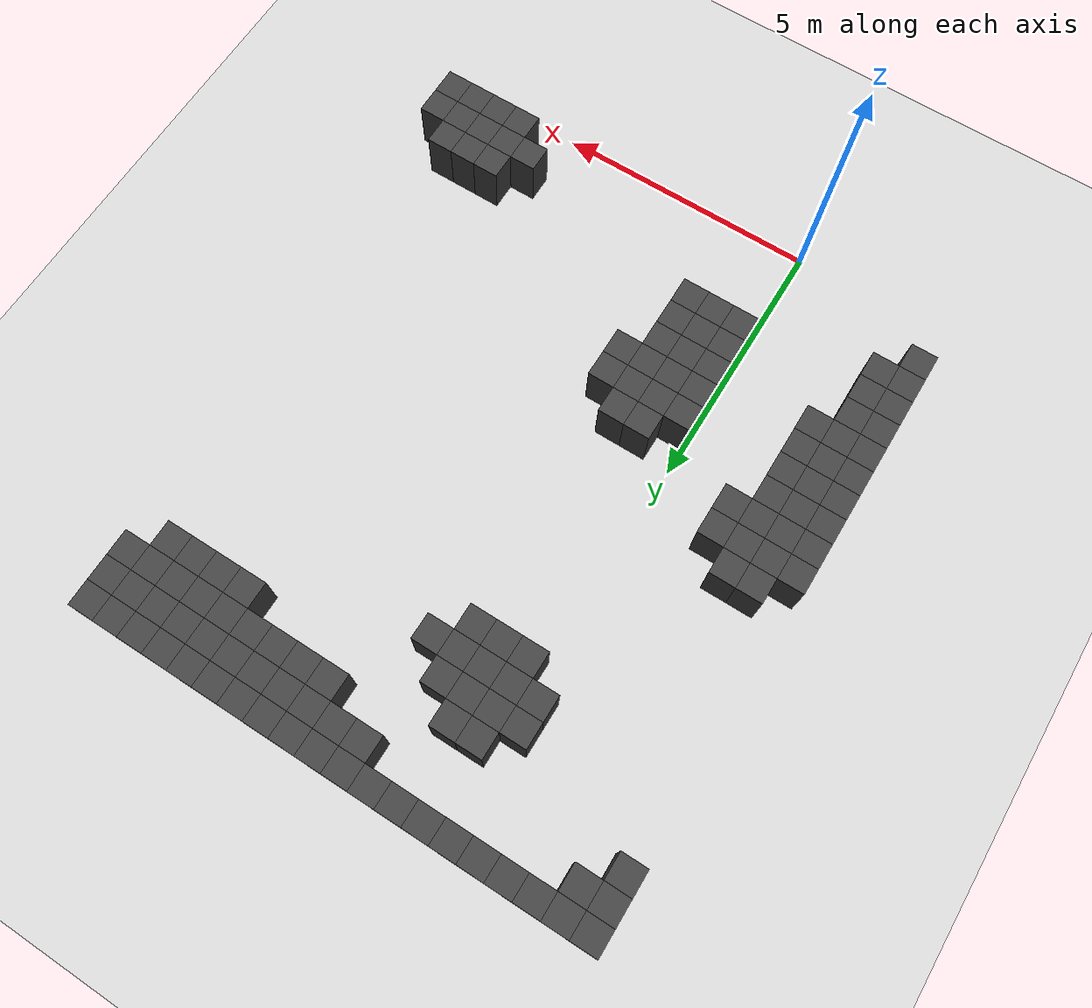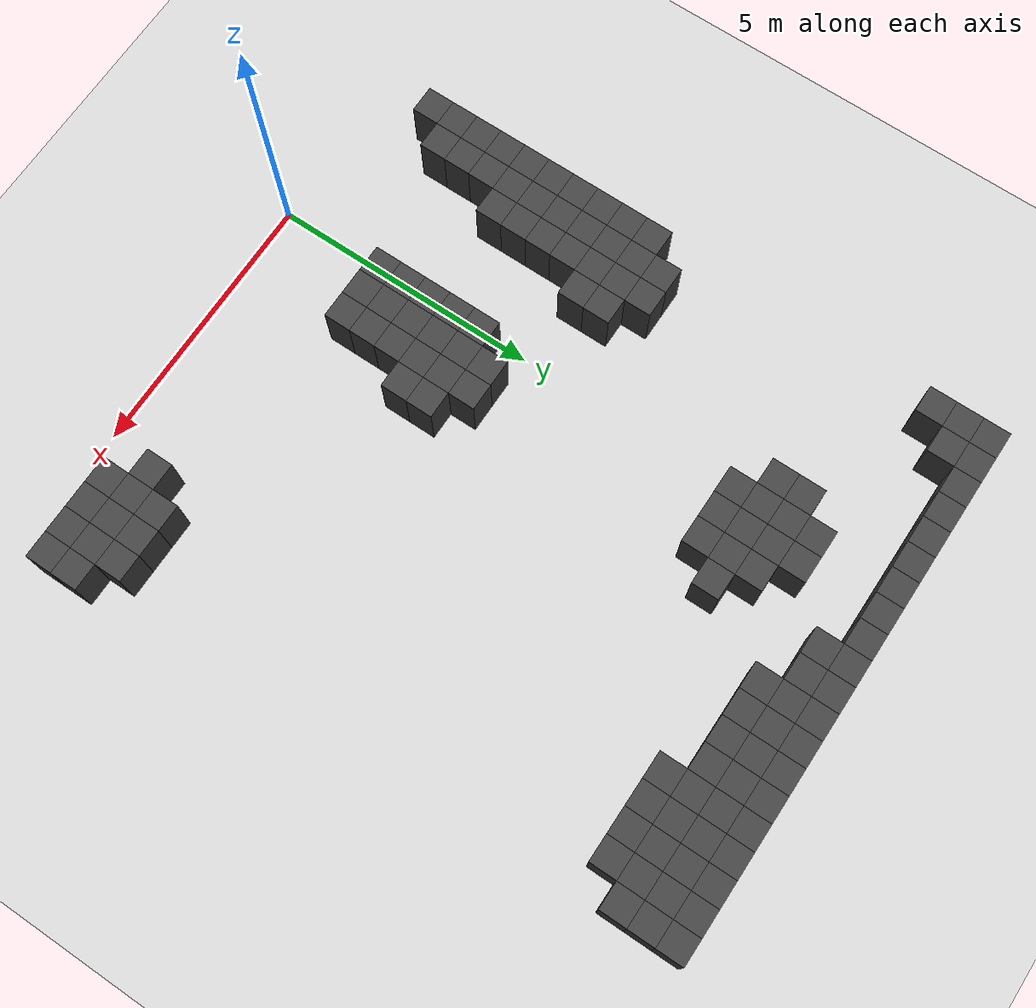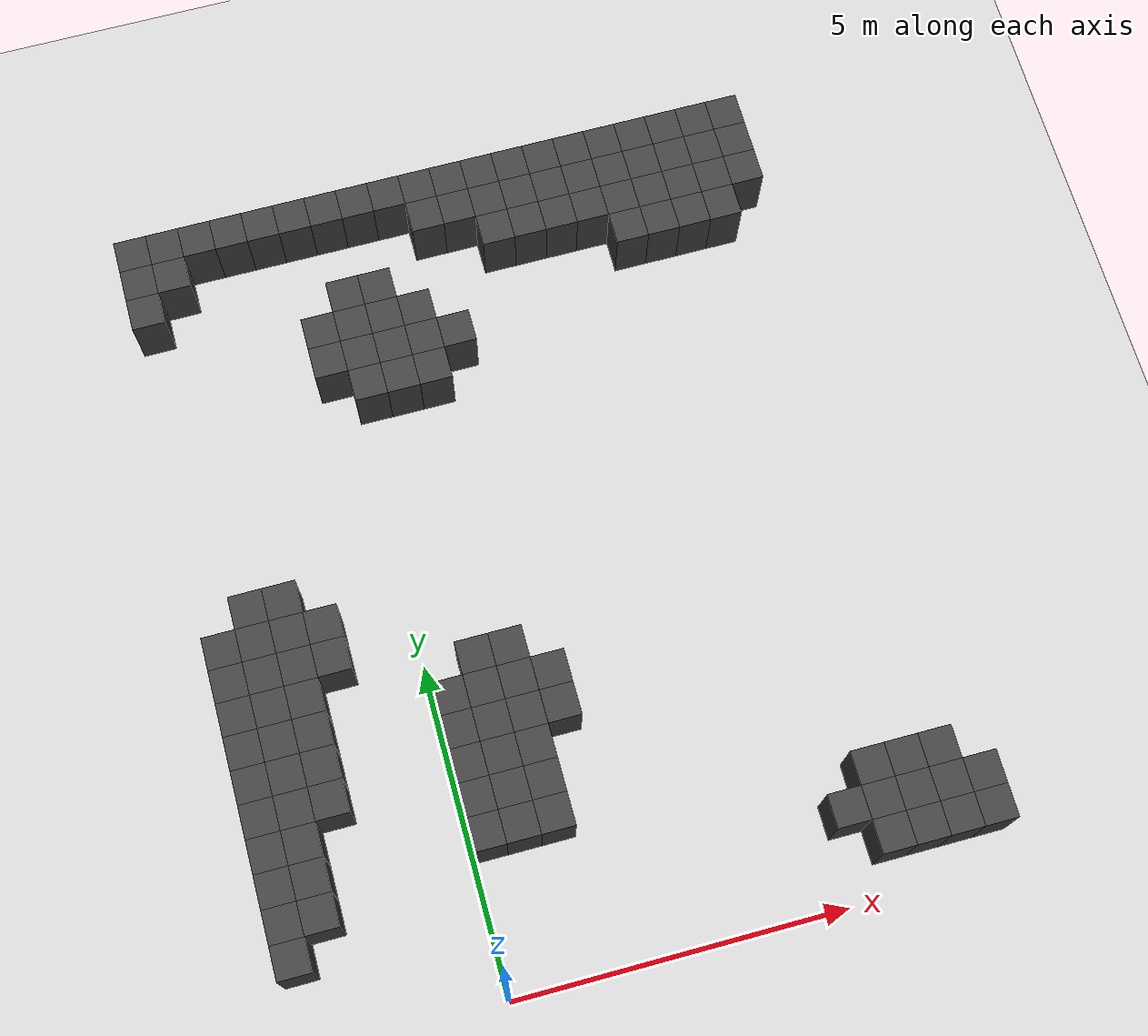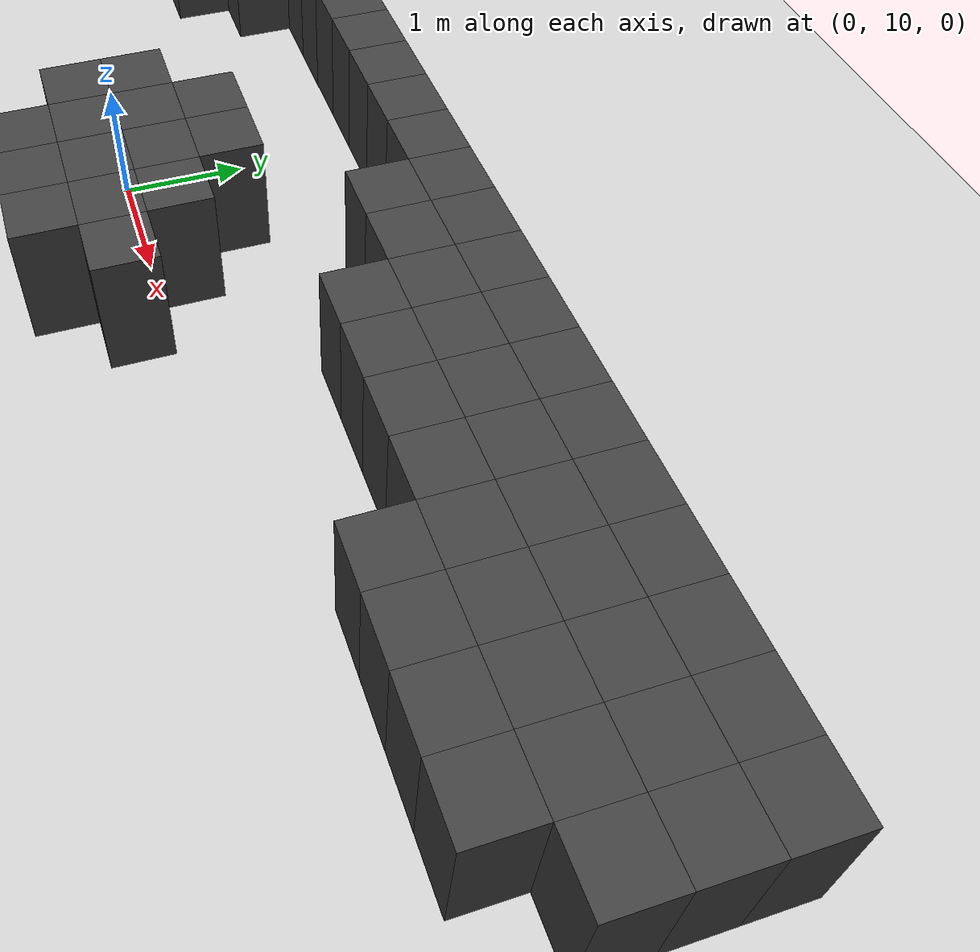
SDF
<sdf version="1.7">
 <world name="map_7372">
  <model name="ground_plane">
   <static>true</static>
   <link name="link">
    <collision name="collision">
     <geometry><plane><normal>0 0 1</normal><size>200 200</size></plane></geometry>
    </collision>
    <visual name="visual">
     <geometry><plane><normal>0 0 1</normal><size>200 200</size></plane></geometry>
     <material><ambient>0.8 0.8 0.8 1</ambient><diffuse>0.8 0.8 0.8 1</diffuse></material>
    </visual>
   </link>
  </model>
  <model name="maze_environment">
   <static>true</static>
   <link name="wall_19">
    <pose>-2.750 12.250 0.500 0 0 0</pose>
    <collision name="col"><geometry><box><size>0.5 0.5 1.0</size></box></geometry></collision>
    <visual name="vis">
     <geometry><box><size>0.5 0.5 1.0</size></box></geometry>
     <material><ambient>0.15 0.15 0.15 1</ambient><diffuse>0.25 0.25 0.25 1</diffuse></material>
    </visual>
   </link>
   <link name="wall_20">
    <pose>-2.250 12.250 0.500 0 0 0</pose>
    <collision name="col"><geometry><box><size>0.5 0.5 1.0</size></box></geometry></collision>
    <visual name="vis">
     <geometry><box><size>0.5 0.5 1.0</size></box></geometry>
     <material><ambient>0.15 0.15 0.15 1</ambient><diffuse>0.25 0.25 0.25 1</diffuse></material>
    </visual>
   </link>
   <link name="wall_21">
    <pose>-1.750 12.250 0.500 0 0 0</pose>
    <collision name="col"><geometry><box><size>0.5 0.5 1.0</size></box></geometry></collision>
    <visual name="vis">
     <geometry><box><size>0.5 0.5 1.0</size></box></geometry>
     <material><ambient>0.15 0.15 0.15 1</ambient><diffuse>0.25 0.25 0.25 1</diffuse></material>
    </visual>
   </link>
   <link name="wall_22">
    <pose>-1.250 12.250 0.500 0 0 0</pose>
    <collision name="col"><geometry><box><size>0.5 0.5 1.0</size></box></geometry></collision>
    <visual name="vis">
     <geometry><box><size>0.5 0.5 1.0</size></box></geometry>
     <material><ambient>0.15 0.15 0.15 1</ambient><diffuse>0.25 0.25 0.25 1</diffuse></material>
    </visual>
   </link>
   <link name="wall_23">
    <pose>-0.750 12.250 0.500 0 0 0</pose>
    <collision name="col"><geometry><box><size>0.5 0.5 1.0</size></box></geometry></collision>
    <visual name="vis">
     <geometry><box><size>0.5 0.5 1.0</size></box></geometry>
     <material><ambient>0.15 0.15 0.15 1</ambient><diffuse>0.25 0.25 0.25 1</diffuse></material>
    </visual>
   </link>
   <link name="wall_24">
    <pose>-0.250 12.250 0.500 0 0 0</pose>
    <collision name="col"><geometry><box><size>0.5 0.5 1.0</size></box></geometry></collision>
    <visual name="vis">
     <geometry><box><size>0.5 0.5 1.0</size></box></geometry>
     <material><ambient>0.15 0.15 0.15 1</ambient><diffuse>0.25 0.25 0.25 1</diffuse></material>
    </visual>
   </link>
   <link name="wall_25">
    <pose>0.250 12.250 0.500 0 0 0</pose>
    <collision name="col"><geometry><box><size>0.5 0.5 1.0</size></box></geometry></collision>
    <visual name="vis">
     <geometry><box><size>0.5 0.5 1.0</size></box></geometry>
     <material><ambient>0.15 0.15 0.15 1</ambient><diffuse>0.25 0.25 0.25 1</diffuse></material>
    </visual>
   </link>
   <link name="wall_26">
    <pose>0.750 12.250 0.500 0 0 0</pose>
    <collision name="col"><geometry><box><size>0.5 0.5 1.0</size></box></geometry></collision>
    <visual name="vis">
     <geometry><box><size>0.5 0.5 1.0</size></box></geometry>
     <material><ambient>0.15 0.15 0.15 1</ambient><diffuse>0.25 0.25 0.25 1</diffuse></material>
    </visual>
   </link>
   <link name="wall_27">
    <pose>1.250 12.250 0.500 0 0 0</pose>
    <collision name="col"><geometry><box><size>0.5 0.5 1.0</size></box></geometry></collision>
    <visual name="vis">
     <geometry><box><size>0.5 0.5 1.0</size></box></geometry>
     <material><ambient>0.15 0.15 0.15 1</ambient><diffuse>0.25 0.25 0.25 1</diffuse></material>
    </visual>
   </link>
   <link name="wall_28">
    <pose>1.750 12.250 0.500 0 0 0</pose>
    <collision name="col"><geometry><box><size>0.5 0.5 1.0</size></box></geometry></collision>
    <visual name="vis">
     <geometry><box><size>0.5 0.5 1.0</size></box></geometry>
     <material><ambient>0.15 0.15 0.15 1</ambient><diffuse>0.25 0.25 0.25 1</diffuse></material>
    </visual>
   </link>
   <link name="wall_29">
    <pose>2.250 12.250 0.500 0 0 0</pose>
    <collision name="col"><geometry><box><size>0.5 0.5 1.0</size></box></geometry></collision>
    <visual name="vis">
     <geometry><box><size>0.5 0.5 1.0</size></box></geometry>
     <material><ambient>0.15 0.15 0.15 1</ambient><diffuse>0.25 0.25 0.25 1</diffuse></material>
    </visual>
   </link>
   <link name="wall_30">
    <pose>2.750 12.250 0.500 0 0 0</pose>
    <collision name="col"><geometry><box><size>0.5 0.5 1.0</size></box></geometry></collision>
    <visual name="vis">
     <geometry><box><size>0.5 0.5 1.0</size></box></geometry>
     <material><ambient>0.15 0.15 0.15 1</ambient><diffuse>0.25 0.25 0.25 1</diffuse></material>
    </visual>
   </link>
   <link name="wall_31">
    <pose>3.250 12.250 0.500 0 0 0</pose>
    <collision name="col"><geometry><box><size>0.5 0.5 1.0</size></box></geometry></collision>
    <visual name="vis">
     <geometry><box><size>0.5 0.5 1.0</size></box></geometry>
     <material><ambient>0.15 0.15 0.15 1</ambient><diffuse>0.25 0.25 0.25 1</diffuse></material>
    </visual>
   </link>
   <link name="wall_32">
    <pose>3.750 12.250 0.500 0 0 0</pose>
    <collision name="col"><geometry><box><size>0.5 0.5 1.0</size></box></geometry></collision>
    <visual name="vis">
     <geometry><box><size>0.5 0.5 1.0</size></box></geometry>
     <material><ambient>0.15 0.15 0.15 1</ambient><diffuse>0.25 0.25 0.25 1</diffuse></material>
    </visual>
   </link>
   <link name="wall_33">
    <pose>4.250 12.250 0.500 0 0 0</pose>
    <collision name="col"><geometry><box><size>0.5 0.5 1.0</size></box></geometry></collision>
    <visual name="vis">
     <geometry><box><size>0.5 0.5 1.0</size></box></geometry>
     <material><ambient>0.15 0.15 0.15 1</ambient><diffuse>0.25 0.25 0.25 1</diffuse></material>
    </visual>
   </link>
   <link name="wall_34">
    <pose>4.750 12.250 0.500 0 0 0</pose>
    <collision name="col"><geometry><box><size>0.5 0.5 1.0</size></box></geometry></collision>
    <visual name="vis">
     <geometry><box><size>0.5 0.5 1.0</size></box></geometry>
     <material><ambient>0.15 0.15 0.15 1</ambient><diffuse>0.25 0.25 0.25 1</diffuse></material>
    </visual>
   </link>
   <link name="wall_35">
    <pose>5.250 12.250 0.500 0 0 0</pose>
    <collision name="col"><geometry><box><size>0.5 0.5 1.0</size></box></geometry></collision>
    <visual name="vis">
     <geometry><box><size>0.5 0.5 1.0</size></box></geometry>
     <material><ambient>0.15 0.15 0.15 1</ambient><diffuse>0.25 0.25 0.25 1</diffuse></material>
    </visual>
   </link>
   <link name="wall_36">
    <pose>5.750 12.250 0.500 0 0 0</pose>
    <collision name="col"><geometry><box><size>0.5 0.5 1.0</size></box></geometry></collision>
    <visual name="vis">
     <geometry><box><size>0.5 0.5 1.0</size></box></geometry>
     <material><ambient>0.15 0.15 0.15 1</ambient><diffuse>0.25 0.25 0.25 1</diffuse></material>
    </visual>
   </link>
   <link name="wall_37">
    <pose>6.250 12.250 0.500 0 0 0</pose>
    <collision name="col"><geometry><box><size>0.5 0.5 1.0</size></box></geometry></collision>
    <visual name="vis">
     <geometry><box><size>0.5 0.5 1.0</size></box></geometry>
     <material><ambient>0.15 0.15 0.15 1</ambient><diffuse>0.25 0.25 0.25 1</diffuse></material>
    </visual>
   </link>
   <link name="wall_38">
    <pose>6.750 12.250 0.500 0 0 0</pose>
    <collision name="col"><geometry><box><size>0.5 0.5 1.0</size></box></geometry></collision>
    <visual name="vis">
     <geometry><box><size>0.5 0.5 1.0</size></box></geometry>
     <material><ambient>0.15 0.15 0.15 1</ambient><diffuse>0.25 0.25 0.25 1</diffuse></material>
    </visual>
   </link>
   <link name="wall_64">
    <pose>-2.750 11.750 0.500 0 0 0</pose>
    <collision name="col"><geometry><box><size>0.5 0.5 1.0</size></box></geometry></collision>
    <visual name="vis">
     <geometry><box><size>0.5 0.5 1.0</size></box></geometry>
     <material><ambient>0.15 0.15 0.15 1</ambient><diffuse>0.25 0.25 0.25 1</diffuse></material>
    </visual>
   </link>
   <link name="wall_65">
    <pose>-2.250 11.750 0.500 0 0 0</pose>
    <collision name="col"><geometry><box><size>0.5 0.5 1.0</size></box></geometry></collision>
    <visual name="vis">
     <geometry><box><size>0.5 0.5 1.0</size></box></geometry>
     <material><ambient>0.15 0.15 0.15 1</ambient><diffuse>0.25 0.25 0.25 1</diffuse></material>
    </visual>
   </link>
   <link name="wall_66">
    <pose>1.750 11.750 0.500 0 0 0</pose>
    <collision name="col"><geometry><box><size>0.5 0.5 1.0</size></box></geometry></collision>
    <visual name="vis">
     <geometry><box><size>0.5 0.5 1.0</size></box></geometry>
     <material><ambient>0.15 0.15 0.15 1</ambient><diffuse>0.25 0.25 0.25 1</diffuse></material>
    </visual>
   </link>
   <link name="wall_67">
    <pose>2.250 11.750 0.500 0 0 0</pose>
    <collision name="col"><geometry><box><size>0.5 0.5 1.0</size></box></geometry></collision>
    <visual name="vis">
     <geometry><box><size>0.5 0.5 1.0</size></box></geometry>
     <material><ambient>0.15 0.15 0.15 1</ambient><diffuse>0.25 0.25 0.25 1</diffuse></material>
    </visual>
   </link>
   <link name="wall_68">
    <pose>2.750 11.750 0.500 0 0 0</pose>
    <collision name="col"><geometry><box><size>0.5 0.5 1.0</size></box></geometry></collision>
    <visual name="vis">
     <geometry><box><size>0.5 0.5 1.0</size></box></geometry>
     <material><ambient>0.15 0.15 0.15 1</ambient><diffuse>0.25 0.25 0.25 1</diffuse></material>
    </visual>
   </link>
   <link name="wall_69">
    <pose>3.250 11.750 0.500 0 0 0</pose>
    <collision name="col"><geometry><box><size>0.5 0.5 1.0</size></box></geometry></collision>
    <visual name="vis">
     <geometry><box><size>0.5 0.5 1.0</size></box></geometry>
     <material><ambient>0.15 0.15 0.15 1</ambient><diffuse>0.25 0.25 0.25 1</diffuse></material>
    </visual>
   </link>
   <link name="wall_70">
    <pose>3.750 11.750 0.500 0 0 0</pose>
    <collision name="col"><geometry><box><size>0.5 0.5 1.0</size></box></geometry></collision>
    <visual name="vis">
     <geometry><box><size>0.5 0.5 1.0</size></box></geometry>
     <material><ambient>0.15 0.15 0.15 1</ambient><diffuse>0.25 0.25 0.25 1</diffuse></material>
    </visual>
   </link>
   <link name="wall_71">
    <pose>4.250 11.750 0.500 0 0 0</pose>
    <collision name="col"><geometry><box><size>0.5 0.5 1.0</size></box></geometry></collision>
    <visual name="vis">
     <geometry><box><size>0.5 0.5 1.0</size></box></geometry>
     <material><ambient>0.15 0.15 0.15 1</ambient><diffuse>0.25 0.25 0.25 1</diffuse></material>
    </visual>
   </link>
   <link name="wall_72">
    <pose>4.750 11.750 0.500 0 0 0</pose>
    <collision name="col"><geometry><box><size>0.5 0.5 1.0</size></box></geometry></collision>
    <visual name="vis">
     <geometry><box><size>0.5 0.5 1.0</size></box></geometry>
     <material><ambient>0.15 0.15 0.15 1</ambient><diffuse>0.25 0.25 0.25 1</diffuse></material>
    </visual>
   </link>
   <link name="wall_73">
    <pose>5.250 11.750 0.500 0 0 0</pose>
    <collision name="col"><geometry><box><size>0.5 0.5 1.0</size></box></geometry></collision>
    <visual name="vis">
     <geometry><box><size>0.5 0.5 1.0</size></box></geometry>
     <material><ambient>0.15 0.15 0.15 1</ambient><diffuse>0.25 0.25 0.25 1</diffuse></material>
    </visual>
   </link>
   <link name="wall_74">
    <pose>5.750 11.750 0.500 0 0 0</pose>
    <collision name="col"><geometry><box><size>0.5 0.5 1.0</size></box></geometry></collision>
    <visual name="vis">
     <geometry><box><size>0.5 0.5 1.0</size></box></geometry>
     <material><ambient>0.15 0.15 0.15 1</ambient><diffuse>0.25 0.25 0.25 1</diffuse></material>
    </visual>
   </link>
   <link name="wall_75">
    <pose>6.250 11.750 0.500 0 0 0</pose>
    <collision name="col"><geometry><box><size>0.5 0.5 1.0</size></box></geometry></collision>
    <visual name="vis">
     <geometry><box><size>0.5 0.5 1.0</size></box></geometry>
     <material><ambient>0.15 0.15 0.15 1</ambient><diffuse>0.25 0.25 0.25 1</diffuse></material>
    </visual>
   </link>
   <link name="wall_76">
    <pose>6.750 11.750 0.500 0 0 0</pose>
    <collision name="col"><geometry><box><size>0.5 0.5 1.0</size></box></geometry></collision>
    <visual name="vis">
     <geometry><box><size>0.5 0.5 1.0</size></box></geometry>
     <material><ambient>0.15 0.15 0.15 1</ambient><diffuse>0.25 0.25 0.25 1</diffuse></material>
    </visual>
   </link>
   <link name="wall_88">
    <pose>-2.750 11.250 0.500 0 0 0</pose>
    <collision name="col"><geometry><box><size>0.5 0.5 1.0</size></box></geometry></collision>
    <visual name="vis">
     <geometry><box><size>0.5 0.5 1.0</size></box></geometry>
     <material><ambient>0.15 0.15 0.15 1</ambient><diffuse>0.25 0.25 0.25 1</diffuse></material>
    </visual>
   </link>
   <link name="wall_89">
    <pose>2.750 11.250 0.500 0 0 0</pose>
    <collision name="col"><geometry><box><size>0.5 0.5 1.0</size></box></geometry></collision>
    <visual name="vis">
     <geometry><box><size>0.5 0.5 1.0</size></box></geometry>
     <material><ambient>0.15 0.15 0.15 1</ambient><diffuse>0.25 0.25 0.25 1</diffuse></material>
    </visual>
   </link>
   <link name="wall_90">
    <pose>3.250 11.250 0.500 0 0 0</pose>
    <collision name="col"><geometry><box><size>0.5 0.5 1.0</size></box></geometry></collision>
    <visual name="vis">
     <geometry><box><size>0.5 0.5 1.0</size></box></geometry>
     <material><ambient>0.15 0.15 0.15 1</ambient><diffuse>0.25 0.25 0.25 1</diffuse></material>
    </visual>
   </link>
   <link name="wall_91">
    <pose>3.750 11.250 0.500 0 0 0</pose>
    <collision name="col"><geometry><box><size>0.5 0.5 1.0</size></box></geometry></collision>
    <visual name="vis">
     <geometry><box><size>0.5 0.5 1.0</size></box></geometry>
     <material><ambient>0.15 0.15 0.15 1</ambient><diffuse>0.25 0.25 0.25 1</diffuse></material>
    </visual>
   </link>
   <link name="wall_92">
    <pose>4.250 11.250 0.500 0 0 0</pose>
    <collision name="col"><geometry><box><size>0.5 0.5 1.0</size></box></geometry></collision>
    <visual name="vis">
     <geometry><box><size>0.5 0.5 1.0</size></box></geometry>
     <material><ambient>0.15 0.15 0.15 1</ambient><diffuse>0.25 0.25 0.25 1</diffuse></material>
    </visual>
   </link>
   <link name="wall_93">
    <pose>4.750 11.250 0.500 0 0 0</pose>
    <collision name="col"><geometry><box><size>0.5 0.5 1.0</size></box></geometry></collision>
    <visual name="vis">
     <geometry><box><size>0.5 0.5 1.0</size></box></geometry>
     <material><ambient>0.15 0.15 0.15 1</ambient><diffuse>0.25 0.25 0.25 1</diffuse></material>
    </visual>
   </link>
   <link name="wall_94">
    <pose>5.250 11.250 0.500 0 0 0</pose>
    <collision name="col"><geometry><box><size>0.5 0.5 1.0</size></box></geometry></collision>
    <visual name="vis">
     <geometry><box><size>0.5 0.5 1.0</size></box></geometry>
     <material><ambient>0.15 0.15 0.15 1</ambient><diffuse>0.25 0.25 0.25 1</diffuse></material>
    </visual>
   </link>
   <link name="wall_95">
    <pose>5.750 11.250 0.500 0 0 0</pose>
    <collision name="col"><geometry><box><size>0.5 0.5 1.0</size></box></geometry></collision>
    <visual name="vis">
     <geometry><box><size>0.5 0.5 1.0</size></box></geometry>
     <material><ambient>0.15 0.15 0.15 1</ambient><diffuse>0.25 0.25 0.25 1</diffuse></material>
    </visual>
   </link>
   <link name="wall_96">
    <pose>6.250 11.250 0.500 0 0 0</pose>
    <collision name="col"><geometry><box><size>0.5 0.5 1.0</size></box></geometry></collision>
    <visual name="vis">
     <geometry><box><size>0.5 0.5 1.0</size></box></geometry>
     <material><ambient>0.15 0.15 0.15 1</ambient><diffuse>0.25 0.25 0.25 1</diffuse></material>
    </visual>
   </link>
   <link name="wall_97">
    <pose>6.750 11.250 0.500 0 0 0</pose>
    <collision name="col"><geometry><box><size>0.5 0.5 1.0</size></box></geometry></collision>
    <visual name="vis">
     <geometry><box><size>0.5 0.5 1.0</size></box></geometry>
     <material><ambient>0.15 0.15 0.15 1</ambient><diffuse>0.25 0.25 0.25 1</diffuse></material>
    </visual>
   </link>
   <link name="wall_104">
    <pose>0.250 10.750 0.500 0 0 0</pose>
    <collision name="col"><geometry><box><size>0.5 0.5 1.0</size></box></geometry></collision>
    <visual name="vis">
     <geometry><box><size>0.5 0.5 1.0</size></box></geometry>
     <material><ambient>0.15 0.15 0.15 1</ambient><diffuse>0.25 0.25 0.25 1</diffuse></material>
    </visual>
   </link>
   <link name="wall_105">
    <pose>0.750 10.750 0.500 0 0 0</pose>
    <collision name="col"><geometry><box><size>0.5 0.5 1.0</size></box></geometry></collision>
    <visual name="vis">
     <geometry><box><size>0.5 0.5 1.0</size></box></geometry>
     <material><ambient>0.15 0.15 0.15 1</ambient><diffuse>0.25 0.25 0.25 1</diffuse></material>
    </visual>
   </link>
   <link name="wall_106">
    <pose>4.750 10.750 0.500 0 0 0</pose>
    <collision name="col"><geometry><box><size>0.5 0.5 1.0</size></box></geometry></collision>
    <visual name="vis">
     <geometry><box><size>0.5 0.5 1.0</size></box></geometry>
     <material><ambient>0.15 0.15 0.15 1</ambient><diffuse>0.25 0.25 0.25 1</diffuse></material>
    </visual>
   </link>
   <link name="wall_107">
    <pose>5.250 10.750 0.500 0 0 0</pose>
    <collision name="col"><geometry><box><size>0.5 0.5 1.0</size></box></geometry></collision>
    <visual name="vis">
     <geometry><box><size>0.5 0.5 1.0</size></box></geometry>
     <material><ambient>0.15 0.15 0.15 1</ambient><diffuse>0.25 0.25 0.25 1</diffuse></material>
    </visual>
   </link>
   <link name="wall_108">
    <pose>5.750 10.750 0.500 0 0 0</pose>
    <collision name="col"><geometry><box><size>0.5 0.5 1.0</size></box></geometry></collision>
    <visual name="vis">
     <geometry><box><size>0.5 0.5 1.0</size></box></geometry>
     <material><ambient>0.15 0.15 0.15 1</ambient><diffuse>0.25 0.25 0.25 1</diffuse></material>
    </visual>
   </link>
   <link name="wall_109">
    <pose>6.250 10.750 0.500 0 0 0</pose>
    <collision name="col"><geometry><box><size>0.5 0.5 1.0</size></box></geometry></collision>
    <visual name="vis">
     <geometry><box><size>0.5 0.5 1.0</size></box></geometry>
     <material><ambient>0.15 0.15 0.15 1</ambient><diffuse>0.25 0.25 0.25 1</diffuse></material>
    </visual>
   </link>
   <link name="wall_116">
    <pose>-0.250 10.250 0.500 0 0 0</pose>
    <collision name="col"><geometry><box><size>0.5 0.5 1.0</size></box></geometry></collision>
    <visual name="vis">
     <geometry><box><size>0.5 0.5 1.0</size></box></geometry>
     <material><ambient>0.15 0.15 0.15 1</ambient><diffuse>0.25 0.25 0.25 1</diffuse></material>
    </visual>
   </link>
   <link name="wall_117">
    <pose>0.250 10.250 0.500 0 0 0</pose>
    <collision name="col"><geometry><box><size>0.5 0.5 1.0</size></box></geometry></collision>
    <visual name="vis">
     <geometry><box><size>0.5 0.5 1.0</size></box></geometry>
     <material><ambient>0.15 0.15 0.15 1</ambient><diffuse>0.25 0.25 0.25 1</diffuse></material>
    </visual>
   </link>
   <link name="wall_118">
    <pose>0.750 10.250 0.500 0 0 0</pose>
    <collision name="col"><geometry><box><size>0.5 0.5 1.0</size></box></geometry></collision>
    <visual name="vis">
     <geometry><box><size>0.5 0.5 1.0</size></box></geometry>
     <material><ambient>0.15 0.15 0.15 1</ambient><diffuse>0.25 0.25 0.25 1</diffuse></material>
    </visual>
   </link>
   <link name="wall_119">
    <pose>1.250 10.250 0.500 0 0 0</pose>
    <collision name="col"><geometry><box><size>0.5 0.5 1.0</size></box></geometry></collision>
    <visual name="vis">
     <geometry><box><size>0.5 0.5 1.0</size></box></geometry>
     <material><ambient>0.15 0.15 0.15 1</ambient><diffuse>0.25 0.25 0.25 1</diffuse></material>
    </visual>
   </link>
   <link name="wall_129">
    <pose>-0.250 9.750 0.500 0 0 0</pose>
    <collision name="col"><geometry><box><size>0.5 0.5 1.0</size></box></geometry></collision>
    <visual name="vis">
     <geometry><box><size>0.5 0.5 1.0</size></box></geometry>
     <material><ambient>0.15 0.15 0.15 1</ambient><diffuse>0.25 0.25 0.25 1</diffuse></material>
    </visual>
   </link>
   <link name="wall_130">
    <pose>0.250 9.750 0.500 0 0 0</pose>
    <collision name="col"><geometry><box><size>0.5 0.5 1.0</size></box></geometry></collision>
    <visual name="vis">
     <geometry><box><size>0.5 0.5 1.0</size></box></geometry>
     <material><ambient>0.15 0.15 0.15 1</ambient><diffuse>0.25 0.25 0.25 1</diffuse></material>
    </visual>
   </link>
   <link name="wall_131">
    <pose>0.750 9.750 0.500 0 0 0</pose>
    <collision name="col"><geometry><box><size>0.5 0.5 1.0</size></box></geometry></collision>
    <visual name="vis">
     <geometry><box><size>0.5 0.5 1.0</size></box></geometry>
     <material><ambient>0.15 0.15 0.15 1</ambient><diffuse>0.25 0.25 0.25 1</diffuse></material>
    </visual>
   </link>
   <link name="wall_132">
    <pose>1.250 9.750 0.500 0 0 0</pose>
    <collision name="col"><geometry><box><size>0.5 0.5 1.0</size></box></geometry></collision>
    <visual name="vis">
     <geometry><box><size>0.5 0.5 1.0</size></box></geometry>
     <material><ambient>0.15 0.15 0.15 1</ambient><diffuse>0.25 0.25 0.25 1</diffuse></material>
    </visual>
   </link>
   <link name="wall_133">
    <pose>1.750 9.750 0.500 0 0 0</pose>
    <collision name="col"><geometry><box><size>0.5 0.5 1.0</size></box></geometry></collision>
    <visual name="vis">
     <geometry><box><size>0.5 0.5 1.0</size></box></geometry>
     <material><ambient>0.15 0.15 0.15 1</ambient><diffuse>0.25 0.25 0.25 1</diffuse></material>
    </visual>
   </link>
   <link name="wall_143">
    <pose>0.250 9.250 0.500 0 0 0</pose>
    <collision name="col"><geometry><box><size>0.5 0.5 1.0</size></box></geometry></collision>
    <visual name="vis">
     <geometry><box><size>0.5 0.5 1.0</size></box></geometry>
     <material><ambient>0.15 0.15 0.15 1</ambient><diffuse>0.25 0.25 0.25 1</diffuse></material>
    </visual>
   </link>
   <link name="wall_144">
    <pose>0.750 9.250 0.500 0 0 0</pose>
    <collision name="col"><geometry><box><size>0.5 0.5 1.0</size></box></geometry></collision>
    <visual name="vis">
     <geometry><box><size>0.5 0.5 1.0</size></box></geometry>
     <material><ambient>0.15 0.15 0.15 1</ambient><diffuse>0.25 0.25 0.25 1</diffuse></material>
    </visual>
   </link>
   <link name="wall_145">
    <pose>1.250 9.250 0.500 0 0 0</pose>
    <collision name="col"><geometry><box><size>0.5 0.5 1.0</size></box></geometry></collision>
    <visual name="vis">
     <geometry><box><size>0.5 0.5 1.0</size></box></geometry>
     <material><ambient>0.15 0.15 0.15 1</ambient><diffuse>0.25 0.25 0.25 1</diffuse></material>
    </visual>
   </link>
   <link name="wall_208">
    <pose>-2.250 6.250 0.500 0 0 0</pose>
    <collision name="col"><geometry><box><size>0.5 0.5 1.0</size></box></geometry></collision>
    <visual name="vis">
     <geometry><box><size>0.5 0.5 1.0</size></box></geometry>
     <material><ambient>0.15 0.15 0.15 1</ambient><diffuse>0.25 0.25 0.25 1</diffuse></material>
    </visual>
   </link>
   <link name="wall_209">
    <pose>-1.750 6.250 0.500 0 0 0</pose>
    <collision name="col"><geometry><box><size>0.5 0.5 1.0</size></box></geometry></collision>
    <visual name="vis">
     <geometry><box><size>0.5 0.5 1.0</size></box></geometry>
     <material><ambient>0.15 0.15 0.15 1</ambient><diffuse>0.25 0.25 0.25 1</diffuse></material>
    </visual>
   </link>
   <link name="wall_219">
    <pose>-2.750 5.750 0.500 0 0 0</pose>
    <collision name="col"><geometry><box><size>0.5 0.5 1.0</size></box></geometry></collision>
    <visual name="vis">
     <geometry><box><size>0.5 0.5 1.0</size></box></geometry>
     <material><ambient>0.15 0.15 0.15 1</ambient><diffuse>0.25 0.25 0.25 1</diffuse></material>
    </visual>
   </link>
   <link name="wall_220">
    <pose>-2.250 5.750 0.500 0 0 0</pose>
    <collision name="col"><geometry><box><size>0.5 0.5 1.0</size></box></geometry></collision>
    <visual name="vis">
     <geometry><box><size>0.5 0.5 1.0</size></box></geometry>
     <material><ambient>0.15 0.15 0.15 1</ambient><diffuse>0.25 0.25 0.25 1</diffuse></material>
    </visual>
   </link>
   <link name="wall_221">
    <pose>-1.750 5.750 0.500 0 0 0</pose>
    <collision name="col"><geometry><box><size>0.5 0.5 1.0</size></box></geometry></collision>
    <visual name="vis">
     <geometry><box><size>0.5 0.5 1.0</size></box></geometry>
     <material><ambient>0.15 0.15 0.15 1</ambient><diffuse>0.25 0.25 0.25 1</diffuse></material>
    </visual>
   </link>
   <link name="wall_222">
    <pose>-1.250 5.750 0.500 0 0 0</pose>
    <collision name="col"><geometry><box><size>0.5 0.5 1.0</size></box></geometry></collision>
    <visual name="vis">
     <geometry><box><size>0.5 0.5 1.0</size></box></geometry>
     <material><ambient>0.15 0.15 0.15 1</ambient><diffuse>0.25 0.25 0.25 1</diffuse></material>
    </visual>
   </link>
   <link name="wall_240">
    <pose>-2.750 5.250 0.500 0 0 0</pose>
    <collision name="col"><geometry><box><size>0.5 0.5 1.0</size></box></geometry></collision>
    <visual name="vis">
     <geometry><box><size>0.5 0.5 1.0</size></box></geometry>
     <material><ambient>0.15 0.15 0.15 1</ambient><diffuse>0.25 0.25 0.25 1</diffuse></material>
    </visual>
   </link>
   <link name="wall_241">
    <pose>-2.250 5.250 0.500 0 0 0</pose>
    <collision name="col"><geometry><box><size>0.5 0.5 1.0</size></box></geometry></collision>
    <visual name="vis">
     <geometry><box><size>0.5 0.5 1.0</size></box></geometry>
     <material><ambient>0.15 0.15 0.15 1</ambient><diffuse>0.25 0.25 0.25 1</diffuse></material>
    </visual>
   </link>
   <link name="wall_242">
    <pose>-1.750 5.250 0.500 0 0 0</pose>
    <collision name="col"><geometry><box><size>0.5 0.5 1.0</size></box></geometry></collision>
    <visual name="vis">
     <geometry><box><size>0.5 0.5 1.0</size></box></geometry>
     <material><ambient>0.15 0.15 0.15 1</ambient><diffuse>0.25 0.25 0.25 1</diffuse></material>
    </visual>
   </link>
   <link name="wall_243">
    <pose>-1.250 5.250 0.500 0 0 0</pose>
    <collision name="col"><geometry><box><size>0.5 0.5 1.0</size></box></geometry></collision>
    <visual name="vis">
     <geometry><box><size>0.5 0.5 1.0</size></box></geometry>
     <material><ambient>0.15 0.15 0.15 1</ambient><diffuse>0.25 0.25 0.25 1</diffuse></material>
    </visual>
   </link>
   <link name="wall_260">
    <pose>-2.750 4.750 0.500 0 0 0</pose>
    <collision name="col"><geometry><box><size>0.5 0.5 1.0</size></box></geometry></collision>
    <visual name="vis">
     <geometry><box><size>0.5 0.5 1.0</size></box></geometry>
     <material><ambient>0.15 0.15 0.15 1</ambient><diffuse>0.25 0.25 0.25 1</diffuse></material>
    </visual>
   </link>
   <link name="wall_261">
    <pose>-2.250 4.750 0.500 0 0 0</pose>
    <collision name="col"><geometry><box><size>0.5 0.5 1.0</size></box></geometry></collision>
    <visual name="vis">
     <geometry><box><size>0.5 0.5 1.0</size></box></geometry>
     <material><ambient>0.15 0.15 0.15 1</ambient><diffuse>0.25 0.25 0.25 1</diffuse></material>
    </visual>
   </link>
   <link name="wall_262">
    <pose>-1.750 4.750 0.500 0 0 0</pose>
    <collision name="col"><geometry><box><size>0.5 0.5 1.0</size></box></geometry></collision>
    <visual name="vis">
     <geometry><box><size>0.5 0.5 1.0</size></box></geometry>
     <material><ambient>0.15 0.15 0.15 1</ambient><diffuse>0.25 0.25 0.25 1</diffuse></material>
    </visual>
   </link>
   <link name="wall_263">
    <pose>0.750 4.750 0.500 0 0 0</pose>
    <collision name="col"><geometry><box><size>0.5 0.5 1.0</size></box></geometry></collision>
    <visual name="vis">
     <geometry><box><size>0.5 0.5 1.0</size></box></geometry>
     <material><ambient>0.15 0.15 0.15 1</ambient><diffuse>0.25 0.25 0.25 1</diffuse></material>
    </visual>
   </link>
   <link name="wall_264">
    <pose>1.250 4.750 0.500 0 0 0</pose>
    <collision name="col"><geometry><box><size>0.5 0.5 1.0</size></box></geometry></collision>
    <visual name="vis">
     <geometry><box><size>0.5 0.5 1.0</size></box></geometry>
     <material><ambient>0.15 0.15 0.15 1</ambient><diffuse>0.25 0.25 0.25 1</diffuse></material>
    </visual>
   </link>
   <link name="wall_281">
    <pose>-2.750 4.250 0.500 0 0 0</pose>
    <collision name="col"><geometry><box><size>0.5 0.5 1.0</size></box></geometry></collision>
    <visual name="vis">
     <geometry><box><size>0.5 0.5 1.0</size></box></geometry>
     <material><ambient>0.15 0.15 0.15 1</ambient><diffuse>0.25 0.25 0.25 1</diffuse></material>
    </visual>
   </link>
   <link name="wall_282">
    <pose>-2.250 4.250 0.500 0 0 0</pose>
    <collision name="col"><geometry><box><size>0.5 0.5 1.0</size></box></geometry></collision>
    <visual name="vis">
     <geometry><box><size>0.5 0.5 1.0</size></box></geometry>
     <material><ambient>0.15 0.15 0.15 1</ambient><diffuse>0.25 0.25 0.25 1</diffuse></material>
    </visual>
   </link>
   <link name="wall_283">
    <pose>-1.750 4.250 0.500 0 0 0</pose>
    <collision name="col"><geometry><box><size>0.5 0.5 1.0</size></box></geometry></collision>
    <visual name="vis">
     <geometry><box><size>0.5 0.5 1.0</size></box></geometry>
     <material><ambient>0.15 0.15 0.15 1</ambient><diffuse>0.25 0.25 0.25 1</diffuse></material>
    </visual>
   </link>
   <link name="wall_284">
    <pose>0.250 4.250 0.500 0 0 0</pose>
    <collision name="col"><geometry><box><size>0.5 0.5 1.0</size></box></geometry></collision>
    <visual name="vis">
     <geometry><box><size>0.5 0.5 1.0</size></box></geometry>
     <material><ambient>0.15 0.15 0.15 1</ambient><diffuse>0.25 0.25 0.25 1</diffuse></material>
    </visual>
   </link>
   <link name="wall_285">
    <pose>0.750 4.250 0.500 0 0 0</pose>
    <collision name="col"><geometry><box><size>0.5 0.5 1.0</size></box></geometry></collision>
    <visual name="vis">
     <geometry><box><size>0.5 0.5 1.0</size></box></geometry>
     <material><ambient>0.15 0.15 0.15 1</ambient><diffuse>0.25 0.25 0.25 1</diffuse></material>
    </visual>
   </link>
   <link name="wall_286">
    <pose>1.250 4.250 0.500 0 0 0</pose>
    <collision name="col"><geometry><box><size>0.5 0.5 1.0</size></box></geometry></collision>
    <visual name="vis">
     <geometry><box><size>0.5 0.5 1.0</size></box></geometry>
     <material><ambient>0.15 0.15 0.15 1</ambient><diffuse>0.25 0.25 0.25 1</diffuse></material>
    </visual>
   </link>
   <link name="wall_287">
    <pose>1.750 4.250 0.500 0 0 0</pose>
    <collision name="col"><geometry><box><size>0.5 0.5 1.0</size></box></geometry></collision>
    <visual name="vis">
     <geometry><box><size>0.5 0.5 1.0</size></box></geometry>
     <material><ambient>0.15 0.15 0.15 1</ambient><diffuse>0.25 0.25 0.25 1</diffuse></material>
    </visual>
   </link>
   <link name="wall_295">
    <pose>-2.750 3.750 0.500 0 0 0</pose>
    <collision name="col"><geometry><box><size>0.5 0.5 1.0</size></box></geometry></collision>
    <visual name="vis">
     <geometry><box><size>0.5 0.5 1.0</size></box></geometry>
     <material><ambient>0.15 0.15 0.15 1</ambient><diffuse>0.25 0.25 0.25 1</diffuse></material>
    </visual>
   </link>
   <link name="wall_296">
    <pose>-2.250 3.750 0.500 0 0 0</pose>
    <collision name="col"><geometry><box><size>0.5 0.5 1.0</size></box></geometry></collision>
    <visual name="vis">
     <geometry><box><size>0.5 0.5 1.0</size></box></geometry>
     <material><ambient>0.15 0.15 0.15 1</ambient><diffuse>0.25 0.25 0.25 1</diffuse></material>
    </visual>
   </link>
   <link name="wall_297">
    <pose>-1.750 3.750 0.500 0 0 0</pose>
    <collision name="col"><geometry><box><size>0.5 0.5 1.0</size></box></geometry></collision>
    <visual name="vis">
     <geometry><box><size>0.5 0.5 1.0</size></box></geometry>
     <material><ambient>0.15 0.15 0.15 1</ambient><diffuse>0.25 0.25 0.25 1</diffuse></material>
    </visual>
   </link>
   <link name="wall_298">
    <pose>0.250 3.750 0.500 0 0 0</pose>
    <collision name="col"><geometry><box><size>0.5 0.5 1.0</size></box></geometry></collision>
    <visual name="vis">
     <geometry><box><size>0.5 0.5 1.0</size></box></geometry>
     <material><ambient>0.15 0.15 0.15 1</ambient><diffuse>0.25 0.25 0.25 1</diffuse></material>
    </visual>
   </link>
   <link name="wall_299">
    <pose>0.750 3.750 0.500 0 0 0</pose>
    <collision name="col"><geometry><box><size>0.5 0.5 1.0</size></box></geometry></collision>
    <visual name="vis">
     <geometry><box><size>0.5 0.5 1.0</size></box></geometry>
     <material><ambient>0.15 0.15 0.15 1</ambient><diffuse>0.25 0.25 0.25 1</diffuse></material>
    </visual>
   </link>
   <link name="wall_300">
    <pose>1.250 3.750 0.500 0 0 0</pose>
    <collision name="col"><geometry><box><size>0.5 0.5 1.0</size></box></geometry></collision>
    <visual name="vis">
     <geometry><box><size>0.5 0.5 1.0</size></box></geometry>
     <material><ambient>0.15 0.15 0.15 1</ambient><diffuse>0.25 0.25 0.25 1</diffuse></material>
    </visual>
   </link>
   <link name="wall_301">
    <pose>1.750 3.750 0.500 0 0 0</pose>
    <collision name="col"><geometry><box><size>0.5 0.5 1.0</size></box></geometry></collision>
    <visual name="vis">
     <geometry><box><size>0.5 0.5 1.0</size></box></geometry>
     <material><ambient>0.15 0.15 0.15 1</ambient><diffuse>0.25 0.25 0.25 1</diffuse></material>
    </visual>
   </link>
   <link name="wall_308">
    <pose>-2.750 3.250 0.500 0 0 0</pose>
    <collision name="col"><geometry><box><size>0.5 0.5 1.0</size></box></geometry></collision>
    <visual name="vis">
     <geometry><box><size>0.5 0.5 1.0</size></box></geometry>
     <material><ambient>0.15 0.15 0.15 1</ambient><diffuse>0.25 0.25 0.25 1</diffuse></material>
    </visual>
   </link>
   <link name="wall_309">
    <pose>-2.250 3.250 0.500 0 0 0</pose>
    <collision name="col"><geometry><box><size>0.5 0.5 1.0</size></box></geometry></collision>
    <visual name="vis">
     <geometry><box><size>0.5 0.5 1.0</size></box></geometry>
     <material><ambient>0.15 0.15 0.15 1</ambient><diffuse>0.25 0.25 0.25 1</diffuse></material>
    </visual>
   </link>
   <link name="wall_310">
    <pose>-1.750 3.250 0.500 0 0 0</pose>
    <collision name="col"><geometry><box><size>0.5 0.5 1.0</size></box></geometry></collision>
    <visual name="vis">
     <geometry><box><size>0.5 0.5 1.0</size></box></geometry>
     <material><ambient>0.15 0.15 0.15 1</ambient><diffuse>0.25 0.25 0.25 1</diffuse></material>
    </visual>
   </link>
   <link name="wall_311">
    <pose>0.250 3.250 0.500 0 0 0</pose>
    <collision name="col"><geometry><box><size>0.5 0.5 1.0</size></box></geometry></collision>
    <visual name="vis">
     <geometry><box><size>0.5 0.5 1.0</size></box></geometry>
     <material><ambient>0.15 0.15 0.15 1</ambient><diffuse>0.25 0.25 0.25 1</diffuse></material>
    </visual>
   </link>
   <link name="wall_312">
    <pose>0.750 3.250 0.500 0 0 0</pose>
    <collision name="col"><geometry><box><size>0.5 0.5 1.0</size></box></geometry></collision>
    <visual name="vis">
     <geometry><box><size>0.5 0.5 1.0</size></box></geometry>
     <material><ambient>0.15 0.15 0.15 1</ambient><diffuse>0.25 0.25 0.25 1</diffuse></material>
    </visual>
   </link>
   <link name="wall_313">
    <pose>1.250 3.250 0.500 0 0 0</pose>
    <collision name="col"><geometry><box><size>0.5 0.5 1.0</size></box></geometry></collision>
    <visual name="vis">
     <geometry><box><size>0.5 0.5 1.0</size></box></geometry>
     <material><ambient>0.15 0.15 0.15 1</ambient><diffuse>0.25 0.25 0.25 1</diffuse></material>
    </visual>
   </link>
   <link name="wall_323">
    <pose>-2.750 2.750 0.500 0 0 0</pose>
    <collision name="col"><geometry><box><size>0.5 0.5 1.0</size></box></geometry></collision>
    <visual name="vis">
     <geometry><box><size>0.5 0.5 1.0</size></box></geometry>
     <material><ambient>0.15 0.15 0.15 1</ambient><diffuse>0.25 0.25 0.25 1</diffuse></material>
    </visual>
   </link>
   <link name="wall_324">
    <pose>-2.250 2.750 0.500 0 0 0</pose>
    <collision name="col"><geometry><box><size>0.5 0.5 1.0</size></box></geometry></collision>
    <visual name="vis">
     <geometry><box><size>0.5 0.5 1.0</size></box></geometry>
     <material><ambient>0.15 0.15 0.15 1</ambient><diffuse>0.25 0.25 0.25 1</diffuse></material>
    </visual>
   </link>
   <link name="wall_325">
    <pose>0.250 2.750 0.500 0 0 0</pose>
    <collision name="col"><geometry><box><size>0.5 0.5 1.0</size></box></geometry></collision>
    <visual name="vis">
     <geometry><box><size>0.5 0.5 1.0</size></box></geometry>
     <material><ambient>0.15 0.15 0.15 1</ambient><diffuse>0.25 0.25 0.25 1</diffuse></material>
    </visual>
   </link>
   <link name="wall_326">
    <pose>0.750 2.750 0.500 0 0 0</pose>
    <collision name="col"><geometry><box><size>0.5 0.5 1.0</size></box></geometry></collision>
    <visual name="vis">
     <geometry><box><size>0.5 0.5 1.0</size></box></geometry>
     <material><ambient>0.15 0.15 0.15 1</ambient><diffuse>0.25 0.25 0.25 1</diffuse></material>
    </visual>
   </link>
   <link name="wall_327">
    <pose>1.250 2.750 0.500 0 0 0</pose>
    <collision name="col"><geometry><box><size>0.5 0.5 1.0</size></box></geometry></collision>
    <visual name="vis">
     <geometry><box><size>0.5 0.5 1.0</size></box></geometry>
     <material><ambient>0.15 0.15 0.15 1</ambient><diffuse>0.25 0.25 0.25 1</diffuse></material>
    </visual>
   </link>
   <link name="wall_339">
    <pose>-2.750 2.250 0.500 0 0 0</pose>
    <collision name="col"><geometry><box><size>0.5 0.5 1.0</size></box></geometry></collision>
    <visual name="vis">
     <geometry><box><size>0.5 0.5 1.0</size></box></geometry>
     <material><ambient>0.15 0.15 0.15 1</ambient><diffuse>0.25 0.25 0.25 1</diffuse></material>
    </visual>
   </link>
   <link name="wall_340">
    <pose>-2.250 2.250 0.500 0 0 0</pose>
    <collision name="col"><geometry><box><size>0.5 0.5 1.0</size></box></geometry></collision>
    <visual name="vis">
     <geometry><box><size>0.5 0.5 1.0</size></box></geometry>
     <material><ambient>0.15 0.15 0.15 1</ambient><diffuse>0.25 0.25 0.25 1</diffuse></material>
    </visual>
   </link>
   <link name="wall_341">
    <pose>0.250 2.250 0.500 0 0 0</pose>
    <collision name="col"><geometry><box><size>0.5 0.5 1.0</size></box></geometry></collision>
    <visual name="vis">
     <geometry><box><size>0.5 0.5 1.0</size></box></geometry>
     <material><ambient>0.15 0.15 0.15 1</ambient><diffuse>0.25 0.25 0.25 1</diffuse></material>
    </visual>
   </link>
   <link name="wall_342">
    <pose>0.750 2.250 0.500 0 0 0</pose>
    <collision name="col"><geometry><box><size>0.5 0.5 1.0</size></box></geometry></collision>
    <visual name="vis">
     <geometry><box><size>0.5 0.5 1.0</size></box></geometry>
     <material><ambient>0.15 0.15 0.15 1</ambient><diffuse>0.25 0.25 0.25 1</diffuse></material>
    </visual>
   </link>
   <link name="wall_343">
    <pose>1.250 2.250 0.500 0 0 0</pose>
    <collision name="col"><geometry><box><size>0.5 0.5 1.0</size></box></geometry></collision>
    <visual name="vis">
     <geometry><box><size>0.5 0.5 1.0</size></box></geometry>
     <material><ambient>0.15 0.15 0.15 1</ambient><diffuse>0.25 0.25 0.25 1</diffuse></material>
    </visual>
   </link>
   <link name="wall_357">
    <pose>-2.750 1.750 0.500 0 0 0</pose>
    <collision name="col"><geometry><box><size>0.5 0.5 1.0</size></box></geometry></collision>
    <visual name="vis">
     <geometry><box><size>0.5 0.5 1.0</size></box></geometry>
     <material><ambient>0.15 0.15 0.15 1</ambient><diffuse>0.25 0.25 0.25 1</diffuse></material>
    </visual>
   </link>
   <link name="wall_358">
    <pose>-2.250 1.750 0.500 0 0 0</pose>
    <collision name="col"><geometry><box><size>0.5 0.5 1.0</size></box></geometry></collision>
    <visual name="vis">
     <geometry><box><size>0.5 0.5 1.0</size></box></geometry>
     <material><ambient>0.15 0.15 0.15 1</ambient><diffuse>0.25 0.25 0.25 1</diffuse></material>
    </visual>
   </link>
   <link name="wall_359">
    <pose>5.750 1.750 0.500 0 0 0</pose>
    <collision name="col"><geometry><box><size>0.5 0.5 1.0</size></box></geometry></collision>
    <visual name="vis">
     <geometry><box><size>0.5 0.5 1.0</size></box></geometry>
     <material><ambient>0.15 0.15 0.15 1</ambient><diffuse>0.25 0.25 0.25 1</diffuse></material>
    </visual>
   </link>
   <link name="wall_360">
    <pose>6.250 1.750 0.500 0 0 0</pose>
    <collision name="col"><geometry><box><size>0.5 0.5 1.0</size></box></geometry></collision>
    <visual name="vis">
     <geometry><box><size>0.5 0.5 1.0</size></box></geometry>
     <material><ambient>0.15 0.15 0.15 1</ambient><diffuse>0.25 0.25 0.25 1</diffuse></material>
    </visual>
   </link>
   <link name="wall_361">
    <pose>6.750 1.750 0.500 0 0 0</pose>
    <collision name="col"><geometry><box><size>0.5 0.5 1.0</size></box></geometry></collision>
    <visual name="vis">
     <geometry><box><size>0.5 0.5 1.0</size></box></geometry>
     <material><ambient>0.15 0.15 0.15 1</ambient><diffuse>0.25 0.25 0.25 1</diffuse></material>
    </visual>
   </link>
   <link name="wall_377">
    <pose>-2.750 1.250 0.500 0 0 0</pose>
    <collision name="col"><geometry><box><size>0.5 0.5 1.0</size></box></geometry></collision>
    <visual name="vis">
     <geometry><box><size>0.5 0.5 1.0</size></box></geometry>
     <material><ambient>0.15 0.15 0.15 1</ambient><diffuse>0.25 0.25 0.25 1</diffuse></material>
    </visual>
   </link>
   <link name="wall_378">
    <pose>5.250 1.250 0.500 0 0 0</pose>
    <collision name="col"><geometry><box><size>0.5 0.5 1.0</size></box></geometry></collision>
    <visual name="vis">
     <geometry><box><size>0.5 0.5 1.0</size></box></geometry>
     <material><ambient>0.15 0.15 0.15 1</ambient><diffuse>0.25 0.25 0.25 1</diffuse></material>
    </visual>
   </link>
   <link name="wall_379">
    <pose>5.750 1.250 0.500 0 0 0</pose>
    <collision name="col"><geometry><box><size>0.5 0.5 1.0</size></box></geometry></collision>
    <visual name="vis">
     <geometry><box><size>0.5 0.5 1.0</size></box></geometry>
     <material><ambient>0.15 0.15 0.15 1</ambient><diffuse>0.25 0.25 0.25 1</diffuse></material>
    </visual>
   </link>
   <link name="wall_380">
    <pose>6.250 1.250 0.500 0 0 0</pose>
    <collision name="col"><geometry><box><size>0.5 0.5 1.0</size></box></geometry></collision>
    <visual name="vis">
     <geometry><box><size>0.5 0.5 1.0</size></box></geometry>
     <material><ambient>0.15 0.15 0.15 1</ambient><diffuse>0.25 0.25 0.25 1</diffuse></material>
    </visual>
   </link>
   <link name="wall_381">
    <pose>6.750 1.250 0.500 0 0 0</pose>
    <collision name="col"><geometry><box><size>0.5 0.5 1.0</size></box></geometry></collision>
    <visual name="vis">
     <geometry><box><size>0.5 0.5 1.0</size></box></geometry>
     <material><ambient>0.15 0.15 0.15 1</ambient><diffuse>0.25 0.25 0.25 1</diffuse></material>
    </visual>
   </link>
   <link name="wall_382">
    <pose>7.250 1.250 0.500 0 0 0</pose>
    <collision name="col"><geometry><box><size>0.5 0.5 1.0</size></box></geometry></collision>
    <visual name="vis">
     <geometry><box><size>0.5 0.5 1.0</size></box></geometry>
     <material><ambient>0.15 0.15 0.15 1</ambient><diffuse>0.25 0.25 0.25 1</diffuse></material>
    </visual>
   </link>
   <link name="wall_396">
    <pose>5.750 0.750 0.500 0 0 0</pose>
    <collision name="col"><geometry><box><size>0.5 0.5 1.0</size></box></geometry></collision>
    <visual name="vis">
     <geometry><box><size>0.5 0.5 1.0</size></box></geometry>
     <material><ambient>0.15 0.15 0.15 1</ambient><diffuse>0.25 0.25 0.25 1</diffuse></material>
    </visual>
   </link>
   <link name="wall_397">
    <pose>6.250 0.750 0.500 0 0 0</pose>
    <collision name="col"><geometry><box><size>0.5 0.5 1.0</size></box></geometry></collision>
    <visual name="vis">
     <geometry><box><size>0.5 0.5 1.0</size></box></geometry>
     <material><ambient>0.15 0.15 0.15 1</ambient><diffuse>0.25 0.25 0.25 1</diffuse></material>
    </visual>
   </link>
   <link name="wall_398">
    <pose>6.750 0.750 0.500 0 0 0</pose>
    <collision name="col"><geometry><box><size>0.5 0.5 1.0</size></box></geometry></collision>
    <visual name="vis">
     <geometry><box><size>0.5 0.5 1.0</size></box></geometry>
     <material><ambient>0.15 0.15 0.15 1</ambient><diffuse>0.25 0.25 0.25 1</diffuse></material>
    </visual>
   </link>
   <link name="wall_399">
    <pose>7.250 0.750 0.500 0 0 0</pose>
    <collision name="col"><geometry><box><size>0.5 0.5 1.0</size></box></geometry></collision>
    <visual name="vis">
     <geometry><box><size>0.5 0.5 1.0</size></box></geometry>
     <material><ambient>0.15 0.15 0.15 1</ambient><diffuse>0.25 0.25 0.25 1</diffuse></material>
    </visual>
   </link>
  </model>
 </world>
</sdf>
